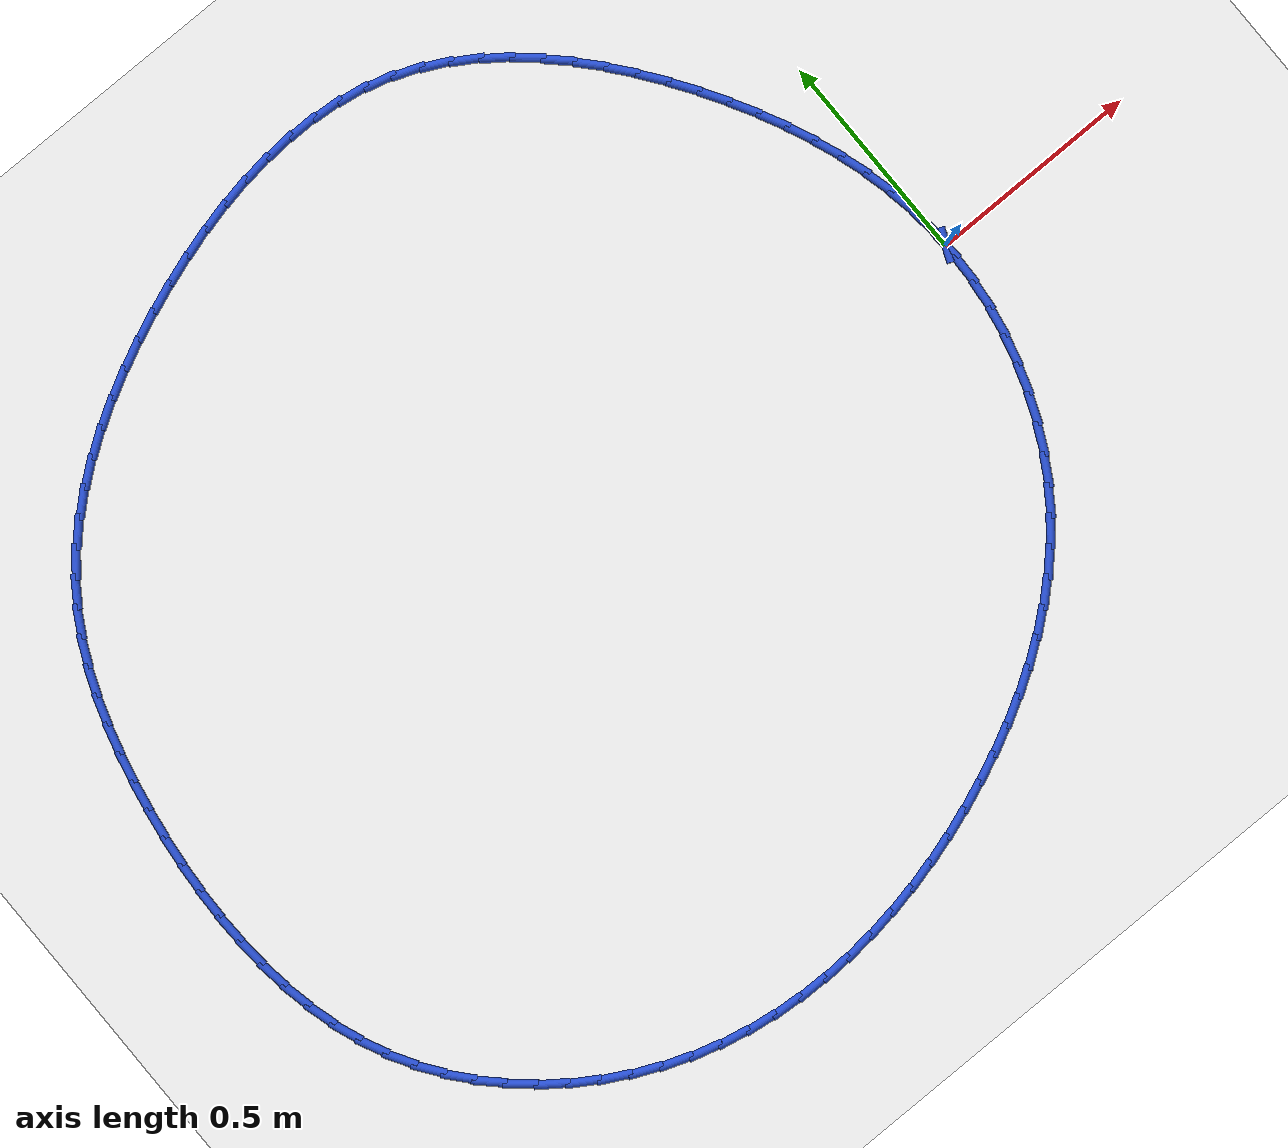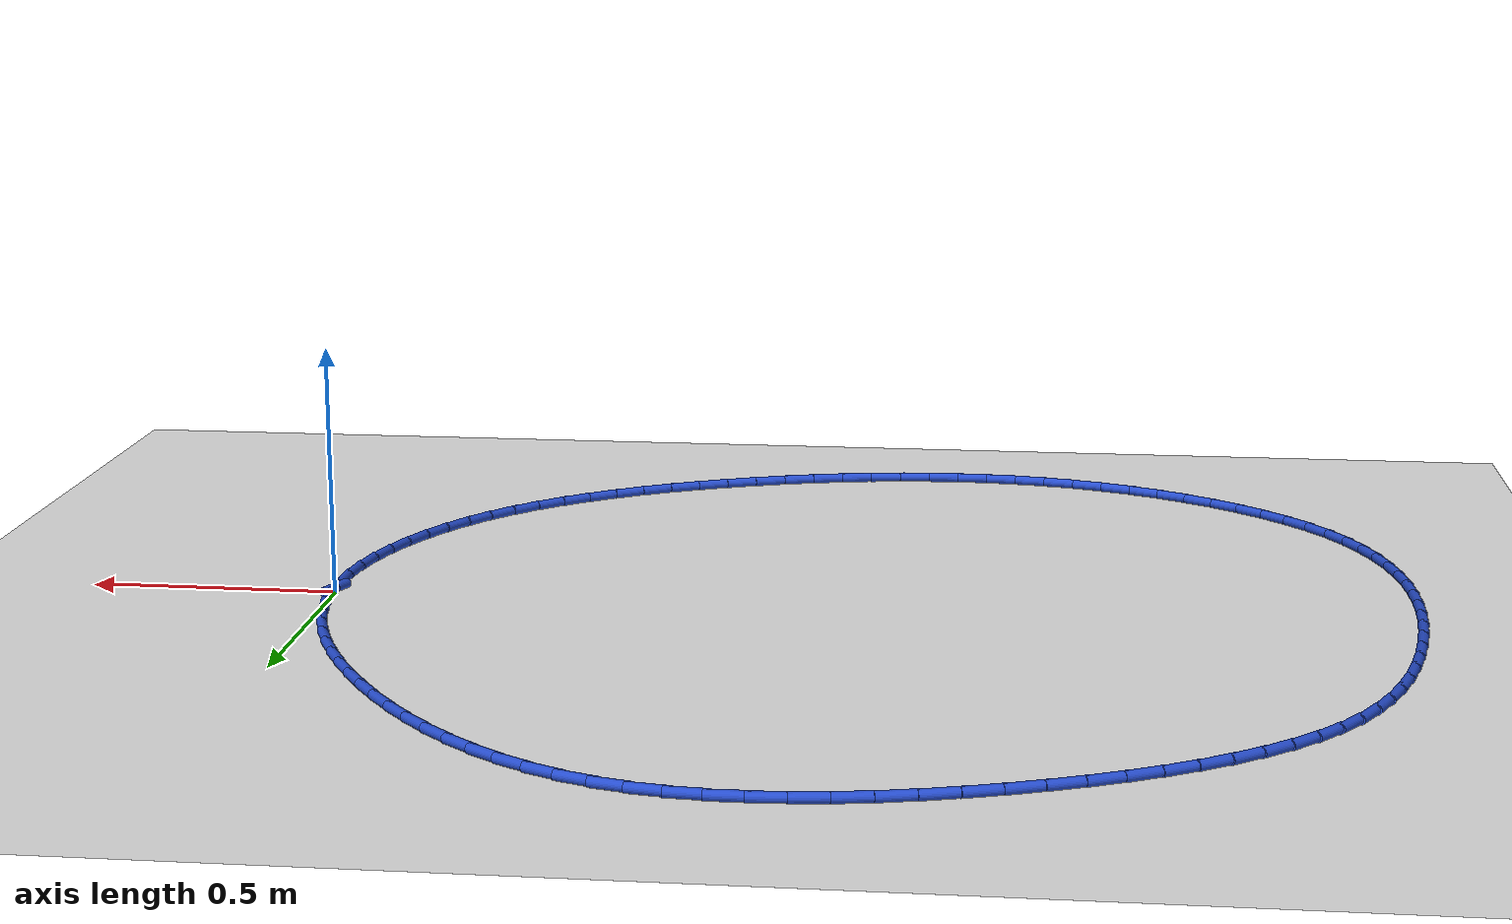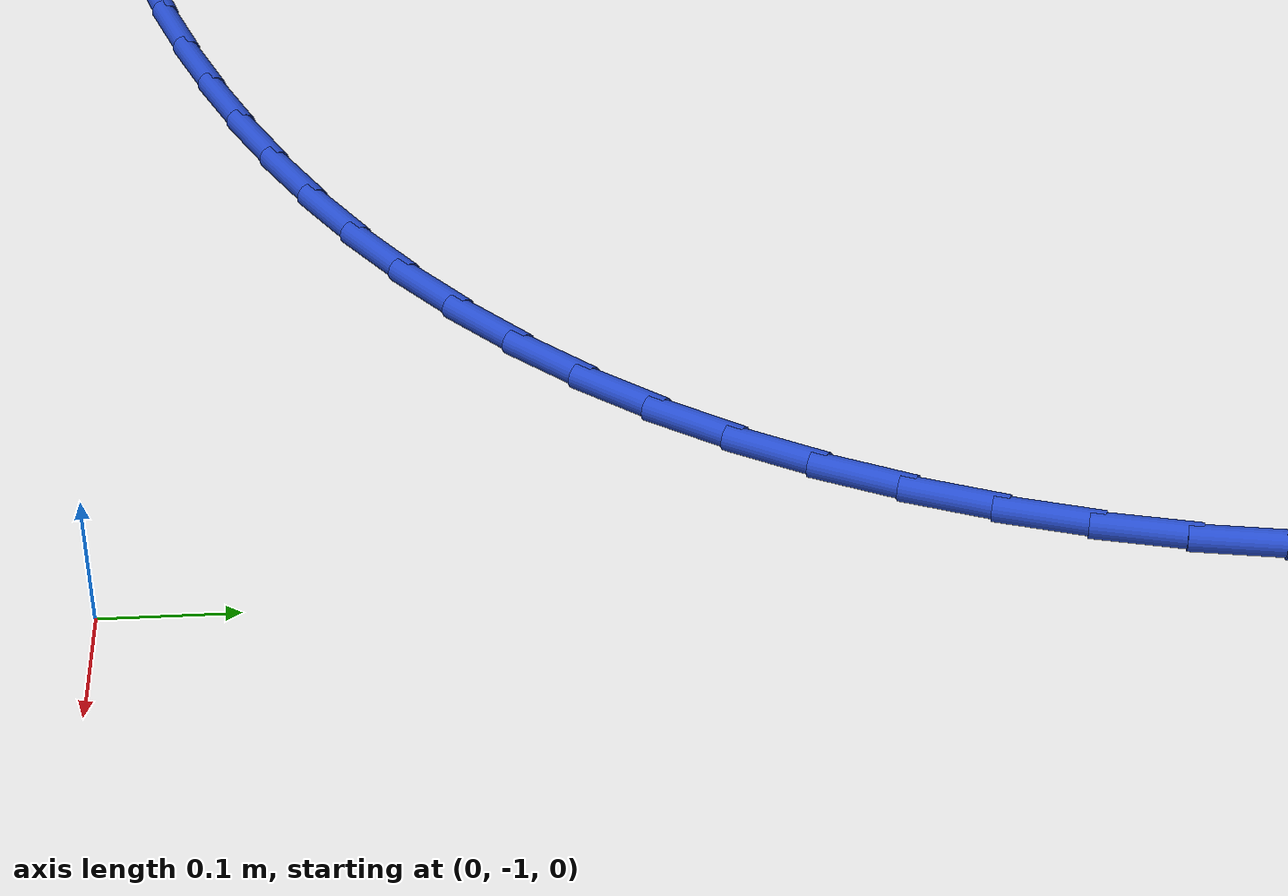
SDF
<sdf version="1.6">
 <world name="default">
  <light name="sun" type="directional">
   <pose>0 0 10 0 -0 0</pose>
   <diffuse>0.8 0.8 0.8 1</diffuse>
   <specular>0.2 0.2 0.2 1</specular>
   <attenuation>
    <range>1000</range>
    <constant>0.9</constant>
    <linear>0.01</linear>
    <quadratic>0.001</quadratic>
   </attenuation>
   <direction>-0.5 0.1 -0.9</direction>
  </light>
  <model name="ground_plane">
   <static>1</static>
   <link name="link">
    <collision name="collision">
     <geometry><plane><normal>0 0 1</normal><size>100 100</size></plane></geometry>
     <surface><friction><ode><mu>100</mu><mu2>50</mu2></ode></friction></surface>
    </collision>
    <visual name="visual">
     <cast_shadows>0</cast_shadows>
     <geometry><plane><normal>0 0 1</normal><size>100 100</size></plane></geometry>
     <material>
      <script><uri>file://media/materials/scripts/gazebo.material</uri><name>Gazebo/WhiteGlow</name></script>
     </material>
    </visual>
   </link>
  </model>
  <gravity>0 0 -9.8</gravity>
  <magnetic_field>6e-06 2.3e-05 -4.2e-05</magnetic_field>
  <atmosphere type="adiabatic"/>
  <physics name="default_physics" default="0" type="ode">
   <max_step_size>0.001</max_step_size>
   <real_time_factor>1</real_time_factor>
   <real_time_update_rate>1000</real_time_update_rate>
  </physics>
  <scene><ambient>0.4 0.4 0.4 1</ambient><background>0.7 0.7 0.7 1</background><shadows>1</shadows></scene>
  <spherical_coordinates>
   <surface_model>EARTH_WGS84</surface_model>
   <latitude_deg>0</latitude_deg>
   <longitude_deg>0</longitude_deg>
   <elevation>0</elevation>
   <heading_deg>0</heading_deg>
  </spherical_coordinates>
  <model name="line">
   <link name="link_0">
    <pose>2.0816681711721685e-17 0.0 0.01 0 1.57 -1.5187383830774717</pose>
    <collision name="collision">
     <geometry><cylinder><radius>0.01</radius><length>0.08</length></cylinder></geometry>
    </collision>
    <visual name="visual">
     <material>
      <script><name>Gazebo/Blue</name><uri>file://media/materials/scripts/gazebo.material</uri></script>
     </material>
     <geometry><cylinder><radius>0.01</radius><length>0.08</length></cylinder></geometry>
    </visual>
   </link>
   <link name="link_1">
    <pose>-0.003479693337203083 0.06678230378861025 0.01 0 1.57 -1.4456531353126494</pose>
    <collision name="collision">
     <geometry><cylinder><radius>0.01</radius><length>0.08</length></cylinder></geometry>
    </collision>
    <visual name="visual">
     <material>
      <script><name>Gazebo/Blue</name><uri>file://media/materials/scripts/gazebo.material</uri></script>
     </material>
     <geometry><cylinder><radius>0.01</radius><length>0.08</length></cylinder></geometry>
    </visual>
   </link>
   <link name="link_2">
    <pose>-0.011796565547532792 0.13289385467589704 0.01 0 1.57 -1.376314766883446</pose>
    <collision name="collision">
     <geometry><cylinder><radius>0.01</radius><length>0.08</length></cylinder></geometry>
    </collision>
    <visual name="visual">
     <material>
      <script><name>Gazebo/Blue</name><uri>file://media/materials/scripts/gazebo.material</uri></script>
     </material>
     <geometry><cylinder><radius>0.01</radius><length>0.08</length></cylinder></geometry>
    </visual>
   </link>
   <link name="link_3">
    <pose>-0.024680099646148472 0.19830206824176366 0.01 0 1.57 -1.311150788150394</pose>
    <collision name="collision">
     <geometry><cylinder><radius>0.01</radius><length>0.08</length></cylinder></geometry>
    </collision>
    <visual name="visual">
     <material>
      <script><name>Gazebo/Blue</name><uri>file://media/materials/scripts/gazebo.material</uri></script>
     </material>
     <geometry><cylinder><radius>0.01</radius><length>0.08</length></cylinder></geometry>
    </visual>
   </link>
   <link name="link_4">
    <pose>-0.041859778648209445 0.26297436006611363 0.01 0 1.57 -1.2503977789535756</pose>
    <collision name="collision">
     <geometry><cylinder><radius>0.01</radius><length>0.08</length></cylinder></geometry>
    </collision>
    <visual name="visual">
     <material>
      <script><name>Gazebo/Blue</name><uri>file://media/materials/scripts/gazebo.material</uri></script>
     </material>
     <geometry><cylinder><radius>0.01</radius><length>0.08</length></cylinder></geometry>
    </visual>
   </link>
   <link name="link_5">
    <pose>-0.06306508556887505 0.32687814572885054 0.01 0 1.57 -1.1941300214805486</pose>
    <collision name="collision">
     <geometry><cylinder><radius>0.01</radius><length>0.08</length></cylinder></geometry>
    </collision>
    <visual name="visual">
     <material>
      <script><name>Gazebo/Blue</name><uri>file://media/materials/scripts/gazebo.material</uri></script>
     </material>
     <geometry><cylinder><radius>0.01</radius><length>0.08</length></cylinder></geometry>
    </visual>
   </link>
   <link name="link_6">
    <pose>-0.08802550342330462 0.3899808408098774 0.01 0 1.57 -1.1422949735570012</pose>
    <collision name="collision">
     <geometry><cylinder><radius>0.01</radius><length>0.08</length></cylinder></geometry>
    </collision>
    <visual name="visual">
     <material>
      <script><name>Gazebo/Blue</name><uri>file://media/materials/scripts/gazebo.material</uri></script>
     </material>
     <geometry><cylinder><radius>0.01</radius><length>0.08</length></cylinder></geometry>
    </visual>
   </link>
   <link name="link_7">
    <pose>-0.11647051522665751 0.45224986088909813 0.01 0 1.57 -1.0947489926506953</pose>
    <collision name="collision">
     <geometry><cylinder><radius>0.01</radius><length>0.08</length></cylinder></geometry>
    </collision>
    <visual name="visual">
     <material>
      <script><name>Gazebo/Blue</name><uri>file://media/materials/scripts/gazebo.material</uri></script>
     </material>
     <geometry><cylinder><radius>0.01</radius><length>0.08</length></cylinder></geometry>
    </visual>
   </link>
   <link name="link_8">
    <pose>-0.14812960399409303 0.5136526215464159 0.01 0 1.57 -1.0512891870400918</pose>
    <collision name="collision">
     <geometry><cylinder><radius>0.01</radius><length>0.08</length></cylinder></geometry>
    </collision>
    <visual name="visual">
     <material>
      <script><name>Gazebo/Blue</name><uri>file://media/materials/scripts/gazebo.material</uri></script>
     </material>
     <geometry><cylinder><radius>0.01</radius><length>0.08</length></cylinder></geometry>
    </visual>
   </link>
   <link name="link_9">
    <pose>-0.18273225274077048 0.574156538361734 0.01 0 1.57 -1.0111834784148166</pose>
    <collision name="collision">
     <geometry><cylinder><radius>0.01</radius><length>0.08</length></cylinder></geometry>
    </collision>
    <visual name="visual">
     <material>
      <script><name>Gazebo/Blue</name><uri>file://media/materials/scripts/gazebo.material</uri></script>
     </material>
     <geometry><cylinder><radius>0.01</radius><length>0.08</length></cylinder></geometry>
    </visual>
   </link>
   <link name="link_10">
    <pose>-0.22002510750933066 0.6336907645570117 0.01 0 1.57 -0.970070061050504</pose>
    <collision name="collision">
     <geometry><cylinder><radius>0.01</radius><length>0.08</length></cylinder></geometry>
    </collision>
    <visual name="visual">
     <material>
      <script><name>Gazebo/Blue</name><uri>file://media/materials/scripts/gazebo.material</uri></script>
     </material>
     <geometry><cylinder><radius>0.01</radius><length>0.08</length></cylinder></geometry>
    </visual>
   </link>
   <link name="link_11">
    <pose>-0.2598934363786982 0.6918754166194534 0.01 0 1.57 -0.9254013505458694</pose>
    <collision name="collision">
     <geometry><cylinder><radius>0.01</radius><length>0.08</length></cylinder></geometry>
    </collision>
    <visual name="visual">
     <material>
      <script><name>Gazebo/Blue</name><uri>file://media/materials/scripts/gazebo.material</uri></script>
     </material>
     <geometry><cylinder><radius>0.01</radius><length>0.08</length></cylinder></geometry>
    </visual>
   </link>
   <link name="link_12">
    <pose>-0.30228956553084213 0.7481811152002565 0.01 0 1.57 -0.8764629592354627</pose>
    <collision name="collision">
     <geometry><cylinder><radius>0.01</radius><length>0.08</length></cylinder></geometry>
    </collision>
    <visual name="visual">
     <material>
      <script><name>Gazebo/Blue</name><uri>file://media/materials/scripts/gazebo.material</uri></script>
     </material>
     <geometry><cylinder><radius>0.01</radius><length>0.08</length></cylinder></geometry>
    </visual>
   </link>
   <link name="link_13">
    <pose>-0.3471662586391413 0.8020775056300946 0.01 0 1.57 -0.8224914250146801</pose>
    <collision name="collision">
     <geometry><cylinder><radius>0.01</radius><length>0.08</length></cylinder></geometry>
    </collision>
    <visual name="visual">
     <material>
      <script><name>Gazebo/Blue</name><uri>file://media/materials/scripts/gazebo.material</uri></script>
     </material>
     <geometry><cylinder><radius>0.01</radius><length>0.08</length></cylinder></geometry>
    </visual>
   </link>
   <link name="link_14">
    <pose>-0.3944762793769747 0.8530342332396411 0.01 0 1.57 -0.7626675887816037</pose>
    <collision name="collision">
     <geometry><cylinder><radius>0.01</radius><length>0.08</length></cylinder></geometry>
    </collision>
    <visual name="visual">
     <material>
      <script><name>Gazebo/Blue</name><uri>file://media/materials/scripts/gazebo.material</uri></script>
     </material>
     <geometry><cylinder><radius>0.01</radius><length>0.08</length></cylinder></geometry>
    </visual>
   </link>
   <link name="link_15">
    <pose>-0.44417239141772147 0.9005209433595704 0.01 0 1.57 -0.696141474783488</pose>
    <collision name="collision">
     <geometry><cylinder><radius>0.01</radius><length>0.08</length></cylinder></geometry>
    </collision>
    <visual name="visual">
     <material>
      <script><name>Gazebo/Blue</name><uri>file://media/materials/scripts/gazebo.material</uri></script>
     </material>
     <geometry><cylinder><radius>0.01</radius><length>0.08</length></cylinder></geometry>
    </visual>
   </link>
   <link name="link_16">
    <pose>-0.4962073584347608 0.9440072813205567 0.01 0 1.57 -0.6220864086940098</pose>
    <collision name="collision">
     <geometry><cylinder><radius>0.01</radius><length>0.08</length></cylinder></geometry>
    </collision>
    <visual name="visual">
     <material>
      <script><name>Gazebo/Blue</name><uri>file://media/materials/scripts/gazebo.material</uri></script>
     </material>
     <geometry><cylinder><radius>0.01</radius><length>0.08</length></cylinder></geometry>
    </visual>
   </link>
   <link name="link_17">
    <pose>-0.5505339441014714 0.9829628924532726 0.01 0 1.57 -0.5397947102771997</pose>
    <collision name="collision">
     <geometry><cylinder><radius>0.01</radius><length>0.08</length></cylinder></geometry>
    </collision>
    <visual name="visual">
     <material>
      <script><name>Gazebo/Blue</name><uri>file://media/materials/scripts/gazebo.material</uri></script>
     </material>
     <geometry><cylinder><radius>0.01</radius><length>0.08</length></cylinder></geometry>
    </visual>
   </link>
   <link name="link_18">
    <pose>-0.6071049120912324 1.0168574220883928 0.01 0 1.57 -0.4488246607949787</pose>
    <collision name="collision">
     <geometry><cylinder><radius>0.01</radius><length>0.08</length></cylinder></geometry>
    </collision>
    <visual name="visual">
     <material>
      <script><name>Gazebo/Blue</name><uri>file://media/materials/scripts/gazebo.material</uri></script>
     </material>
     <geometry><cylinder><radius>0.01</radius><length>0.08</length></cylinder></geometry>
    </visual>
   </link>
   <link name="link_19">
    <pose>-0.6658730260774229 1.0451605155565908 0.01 0 1.57 -0.3492708769257588</pose>
    <collision name="collision">
     <geometry><cylinder><radius>0.01</radius><length>0.08</length></cylinder></geometry>
    </collision>
    <visual name="visual">
     <material>
      <script><name>Gazebo/Blue</name><uri>file://media/materials/scripts/gazebo.material</uri></script>
     </material>
     <geometry><cylinder><radius>0.01</radius><length>0.08</length></cylinder></geometry>
    </visual>
   </link>
   <link name="link_20">
    <pose>-0.726789710607035 1.0673465206305373 0.01 0 1.57 -0.24711293350780855</pose>
    <collision name="collision">
     <geometry><cylinder><radius>0.01</radius><length>0.08</length></cylinder></geometry>
    </collision>
    <visual name="visual">
     <material>
      <script><name>Gazebo/Blue</name><uri>file://media/materials/scripts/gazebo.material</uri></script>
     </material>
     <geometry><cylinder><radius>0.01</radius><length>0.08</length></cylinder></geometry>
    </visual>
   </link>
   <link name="link_21">
    <pose>-0.789712368644573 1.0832199488689631 0.01 0 1.57 -0.15209700760386016</pose>
    <collision name="collision">
     <geometry><cylinder><radius>0.01</radius><length>0.08</length></cylinder></geometry>
    </collision>
    <visual name="visual">
     <material>
      <script><name>Gazebo/Blue</name><uri>file://media/materials/scripts/gazebo.material</uri></script>
     </material>
     <geometry><cylinder><radius>0.01</radius><length>0.08</length></cylinder></geometry>
    </visual>
   </link>
   <link name="link_22">
    <pose>-0.8543442107677962 1.0931267698750569 0.01 0 1.57 -0.06557928395961914</pose>
    <collision name="collision">
     <geometry><cylinder><radius>0.01</radius><length>0.08</length></cylinder></geometry>
    </collision>
    <visual name="visual">
     <material>
      <script><name>Gazebo/Blue</name><uri>file://media/materials/scripts/gazebo.material</uri></script>
     </material>
     <geometry><cylinder><radius>0.01</radius><length>0.08</length></cylinder></geometry>
    </visual>
   </link>
   <link name="link_23">
    <pose>-0.9203741432713728 1.0974631838069193 0.01 0 1.57 0.012481939877408562</pose>
    <collision name="collision">
     <geometry><cylinder><radius>0.01</radius><length>0.08</length></cylinder></geometry>
    </collision>
    <visual name="visual">
     <material>
      <script><name>Gazebo/Blue</name><uri>file://media/materials/scripts/gazebo.material</uri></script>
     </material>
     <geometry><cylinder><radius>0.01</radius><length>0.08</length></cylinder></geometry>
    </visual>
   </link>
   <link name="link_24">
    <pose>-0.9874910724499706 1.0966253908226502 0.01 0 1.57 0.08252777717005916</pose>
    <collision name="collision">
     <geometry><cylinder><radius>0.01</radius><length>0.08</length></cylinder></geometry>
    </collision>
    <visual name="visual">
     <material>
      <script><name>Gazebo/Blue</name><uri>file://media/materials/scripts/gazebo.material</uri></script>
     </material>
     <geometry><cylinder><radius>0.01</radius><length>0.08</length></cylinder></geometry>
    </visual>
   </link>
   <link name="link_25">
    <pose>-1.055383904598259 1.09100959108035 0.01 0 1.57 0.14522477893273686</pose>
    <collision name="collision">
     <geometry><cylinder><radius>0.01</radius><length>0.08</length></cylinder></geometry>
    </collision>
    <visual name="visual">
     <material>
      <script><name>Gazebo/Blue</name><uri>file://media/materials/scripts/gazebo.material</uri></script>
     </material>
     <geometry><cylinder><radius>0.01</radius><length>0.08</length></cylinder></geometry>
    </visual>
   </link>
   <link name="link_26">
    <pose>-1.1237415460109057 1.0810119847381185 0.01 0 1.57 0.20133536938013774</pose>
    <collision name="collision">
     <geometry><cylinder><radius>0.01</radius><length>0.08</length></cylinder></geometry>
    </collision>
    <visual name="visual">
     <material>
      <script><name>Gazebo/Blue</name><uri>file://media/materials/scripts/gazebo.material</uri></script>
     </material>
     <geometry><cylinder><radius>0.01</radius><length>0.08</length></cylinder></geometry>
    </visual>
   </link>
   <link name="link_27">
    <pose>-1.1922529029825797 1.0670287719540563 0.01 0 1.57 0.2516334574924002</pose>
    <collision name="collision">
     <geometry><cylinder><radius>0.01</radius><length>0.08</length></cylinder></geometry>
    </collision>
    <visual name="visual">
     <material>
      <script><name>Gazebo/Blue</name><uri>file://media/materials/scripts/gazebo.material</uri></script>
     </material>
     <geometry><cylinder><radius>0.01</radius><length>0.08</length></cylinder></geometry>
    </visual>
   </link>
   <link name="link_28">
    <pose>-1.2606068818079488 1.0494561528862636 0.01 0 1.57 0.2968560771919993</pose>
    <collision name="collision">
     <geometry><cylinder><radius>0.01</radius><length>0.08</length></cylinder></geometry>
    </collision>
    <visual name="visual">
     <material>
      <script><name>Gazebo/Blue</name><uri>file://media/materials/scripts/gazebo.material</uri></script>
     </material>
     <geometry><cylinder><radius>0.01</radius><length>0.08</length></cylinder></geometry>
    </visual>
   </link>
   <link name="link_29">
    <pose>-1.3284923887816809 1.0286903276928403 0.01 0 1.57 0.3376801105841949</pose>
    <collision name="collision">
     <geometry><cylinder><radius>0.01</radius><length>0.08</length></cylinder></geometry>
    </collision>
    <visual name="visual">
     <material>
      <script><name>Gazebo/Blue</name><uri>file://media/materials/scripts/gazebo.material</uri></script>
     </material>
     <geometry><cylinder><radius>0.01</radius><length>0.08</length></cylinder></geometry>
    </visual>
   </link>
   <link name="link_30">
    <pose>-1.3955983301984456 1.0051274965318864 0.01 0 1.57 0.37515721307792776</pose>
    <collision name="collision">
     <geometry><cylinder><radius>0.01</radius><length>0.08</length></cylinder></geometry>
    </collision>
    <visual name="visual">
     <material>
      <script><name>Gazebo/Blue</name><uri>file://media/materials/scripts/gazebo.material</uri></script>
     </material>
     <geometry><cylinder><radius>0.01</radius><length>0.08</length></cylinder></geometry>
    </visual>
   </link>
   <link name="link_31">
    <pose>-1.4616115541705943 0.9791309503210415 0.01 0 1.57 0.41386113426279597</pose>
    <collision name="collision">
     <geometry><cylinder><radius>0.01</radius><length>0.08</length></cylinder></geometry>
    </collision>
    <visual name="visual">
     <material>
      <script><name>Gazebo/Blue</name><uri>file://media/materials/scripts/gazebo.material</uri></script>
     </material>
     <geometry><cylinder><radius>0.01</radius><length>0.08</length></cylinder></geometry>
    </visual>
   </link>
   <link name="link_32">
    <pose>-1.5262000099688815 0.9507617975535273 0.01 0 1.57 0.456393995896438</pose>
    <collision name="collision">
     <geometry><cylinder><radius>0.01</radius><length>0.08</length></cylinder></geometry>
    </collision>
    <visual name="visual">
     <material>
      <script><name>Gazebo/Blue</name><uri>file://media/materials/scripts/gazebo.material</uri></script>
     </material>
     <geometry><cylinder><radius>0.01</radius><length>0.08</length></cylinder></geometry>
    </visual>
   </link>
   <link name="link_33">
    <pose>-1.5890214820268878 0.9199186163830221 0.01 0 1.57 0.5032035440295061</pose>
    <collision name="collision">
     <geometry><cylinder><radius>0.01</radius><length>0.08</length></cylinder></geometry>
    </collision>
    <visual name="visual">
     <material>
      <script><name>Gazebo/Blue</name><uri>file://media/materials/scripts/gazebo.material</uri></script>
     </material>
     <geometry><cylinder><radius>0.01</radius><length>0.08</length></cylinder></geometry>
    </visual>
   </link>
   <link name="link_34">
    <pose>-1.6497336569199954 0.8864984202626834 0.01 0 1.57 0.5547309513055131</pose>
    <collision name="collision">
     <geometry><cylinder><radius>0.01</radius><length>0.08</length></cylinder></geometry>
    </collision>
    <visual name="visual">
     <material>
      <script><name>Gazebo/Blue</name><uri>file://media/materials/scripts/gazebo.material</uri></script>
     </material>
     <geometry><cylinder><radius>0.01</radius><length>0.08</length></cylinder></geometry>
    </visual>
   </link>
   <link name="link_35">
    <pose>-1.7079942212235886 0.8503982226456689 0.01 0 1.57 0.6114097345750679</pose>
    <collision name="collision">
     <geometry><cylinder><radius>0.01</radius><length>0.08</length></cylinder></geometry>
    </collision>
    <visual name="visual">
     <material>
      <script><name>Gazebo/Blue</name><uri>file://media/materials/scripts/gazebo.material</uri></script>
     </material>
     <geometry><cylinder><radius>0.01</radius><length>0.08</length></cylinder></geometry>
    </visual>
   </link>
   <link name="link_36">
    <pose>-1.7634608615130483 0.811515036985136 0.01 0 1.57 0.6736311261494863</pose>
    <collision name="collision">
     <geometry><cylinder><radius>0.01</radius><length>0.08</length></cylinder></geometry>
    </collision>
    <visual name="visual">
     <material>
      <script><name>Gazebo/Blue</name><uri>file://media/materials/scripts/gazebo.material</uri></script>
     </material>
     <geometry><cylinder><radius>0.01</radius><length>0.08</length></cylinder></geometry>
    </visual>
   </link>
   <link name="link_37">
    <pose>-1.8157912643637586 0.7697458767342413 0.01 0 1.57 0.7416942317323153</pose>
    <collision name="collision">
     <geometry><cylinder><radius>0.01</radius><length>0.08</length></cylinder></geometry>
    </collision>
    <visual name="visual">
     <material>
      <script><name>Gazebo/Blue</name><uri>file://media/materials/scripts/gazebo.material</uri></script>
     </material>
     <geometry><cylinder><radius>0.01</radius><length>0.08</length></cylinder></geometry>
    </visual>
   </link>
   <link name="link_38">
    <pose>-1.8646431163511017 0.724987755346143 0.01 0 1.57 0.8157403697529217</pose>
    <collision name="collision">
     <geometry><cylinder><radius>0.01</radius><length>0.08</length></cylinder></geometry>
    </collision>
    <visual name="visual">
     <material>
      <script><name>Gazebo/Blue</name><uri>file://media/materials/scripts/gazebo.material</uri></script>
     </material>
     <geometry><cylinder><radius>0.01</radius><length>0.08</length></cylinder></geometry>
    </visual>
   </link>
   <link name="link_39">
    <pose>-1.9096741040504615 0.6771376862739984 0.01 0 1.57 0.8956755466541075</pose>
    <collision name="collision">
     <geometry><cylinder><radius>0.01</radius><length>0.08</length></cylinder></geometry>
    </collision>
    <visual name="visual">
     <material>
      <script><name>Gazebo/Blue</name><uri>file://media/materials/scripts/gazebo.material</uri></script>
     </material>
     <geometry><cylinder><radius>0.01</radius><length>0.08</length></cylinder></geometry>
    </visual>
   </link>
   <link name="link_40">
    <pose>-1.95054191403722 0.6260926829709647 0.01 0 1.57 0.9804484869251218</pose>
    <collision name="collision">
     <geometry><cylinder><radius>0.01</radius><length>0.08</length></cylinder></geometry>
    </collision>
    <visual name="visual">
     <material>
      <script><name>Gazebo/Blue</name><uri>file://media/materials/scripts/gazebo.material</uri></script>
     </material>
     <geometry><cylinder><radius>0.01</radius><length>0.08</length></cylinder></geometry>
    </visual>
   </link>
   <link name="link_41">
    <pose>-1.9869391406517338 0.5717732913691893 0.01 0 1.57 1.0622589568901197</pose>
    <collision name="collision">
     <geometry><cylinder><radius>0.01</radius><length>0.08</length></cylinder></geometry>
    </collision>
    <visual name="visual">
     <material>
      <script><name>Gazebo/Blue</name><uri>file://media/materials/scripts/gazebo.material</uri></script>
     </material>
     <geometry><cylinder><radius>0.01</radius><length>0.08</length></cylinder></geometry>
    </visual>
   </link>
   <link name="link_42">
    <pose>-2.018943707222595 0.5143598204170617 0.01 0 1.57 1.1361967375677309</pose>
    <collision name="collision">
     <geometry><cylinder><radius>0.01</radius><length>0.08</length></cylinder></geometry>
    </collision>
    <visual name="visual">
     <material>
      <script><name>Gazebo/Blue</name><uri>file://media/materials/scripts/gazebo.material</uri></script>
     </material>
     <geometry><cylinder><radius>0.01</radius><length>0.08</length></cylinder></geometry>
    </visual>
   </link>
   <link name="link_43">
    <pose>-2.0468727478215767 0.45419383893716386 0.01 0 1.57 1.202132121747323</pose>
    <collision name="collision">
     <geometry><cylinder><radius>0.01</radius><length>0.08</length></cylinder></geometry>
    </collision>
    <visual name="visual">
     <material>
      <script><name>Gazebo/Blue</name><uri>file://media/materials/scripts/gazebo.material</uri></script>
     </material>
     <geometry><cylinder><radius>0.01</radius><length>0.08</length></cylinder></geometry>
    </visual>
   </link>
   <link name="link_44">
    <pose>-2.071046982016315 0.39161933285343564 0.01 0 1.57 1.2603125709435175</pose>
    <collision name="collision">
     <geometry><cylinder><radius>0.01</radius><length>0.08</length></cylinder></geometry>
    </collision>
    <visual name="visual">
     <material>
      <script><name>Gazebo/Blue</name><uri>file://media/materials/scripts/gazebo.material</uri></script>
     </material>
     <geometry><cylinder><radius>0.01</radius><length>0.08</length></cylinder></geometry>
    </visual>
   </link>
   <link name="link_45">
    <pose>-2.0917871293744463 0.3269802880898162 0.01 0 1.57 1.3111665284996123</pose>
    <collision name="collision">
     <geometry><cylinder><radius>0.01</radius><length>0.08</length></cylinder></geometry>
    </collision>
    <visual name="visual">
     <material>
      <script><name>Gazebo/Blue</name><uri>file://media/materials/scripts/gazebo.material</uri></script>
     </material>
     <geometry><cylinder><radius>0.01</radius><length>0.08</length></cylinder></geometry>
    </visual>
   </link>
   <link name="link_46">
    <pose>-2.1094139094636057 0.2606206905702451 0.01 0 1.57 1.3552012902809234</pose>
    <collision name="collision">
     <geometry><cylinder><radius>0.01</radius><length>0.08</length></cylinder></geometry>
    </collision>
    <visual name="visual">
     <material>
      <script><name>Gazebo/Blue</name><uri>file://media/materials/scripts/gazebo.material</uri></script>
     </material>
     <geometry><cylinder><radius>0.01</radius><length>0.08</length></cylinder></geometry>
    </visual>
   </link>
   <link name="link_47">
    <pose>-2.1242480418514305 0.19288452621866178 0.01 0 1.57 1.3930417455002087</pose>
    <collision name="collision">
     <geometry><cylinder><radius>0.01</radius><length>0.08</length></cylinder></geometry>
    </collision>
    <visual name="visual">
     <material>
      <script><name>Gazebo/Blue</name><uri>file://media/materials/scripts/gazebo.material</uri></script>
     </material>
     <geometry><cylinder><radius>0.01</radius><length>0.08</length></cylinder></geometry>
    </visual>
   </link>
   <link name="link_48">
    <pose>-2.1366024804240076 0.12411530647527223 0.01 0 1.57 1.4288161410829463</pose>
    <collision name="collision">
     <geometry><cylinder><radius>0.01</radius><length>0.08</length></cylinder></geometry>
    </collision>
    <visual name="visual">
     <material>
      <script><name>Gazebo/Blue</name><uri>file://media/materials/scripts/gazebo.material</uri></script>
     </material>
     <geometry><cylinder><radius>0.01</radius><length>0.08</length></cylinder></geometry>
    </visual>
   </link>
   <link name="link_49">
    <pose>-2.1465332965975232 0.05464084724181996 0.01 0 1.57 1.4673539430478069</pose>
    <collision name="collision">
     <geometry><cylinder><radius>0.01</radius><length>0.08</length></cylinder></geometry>
    </collision>
    <visual name="visual">
     <material>
      <script><name>Gazebo/Blue</name><uri>file://media/materials/scripts/gazebo.material</uri></script>
     </material>
     <geometry><cylinder><radius>0.01</radius><length>0.08</length></cylinder></geometry>
    </visual>
   </link>
   <link name="link_50">
    <pose>-2.1537867897863014 -0.01522996267284041 0.01 0 1.57 1.5093522334289262</pose>
    <collision name="collision">
     <geometry><cylinder><radius>0.01</radius><length>0.08</length></cylinder></geometry>
    </collision>
    <visual name="visual">
     <material>
      <script><name>Gazebo/Blue</name><uri>file://media/materials/scripts/gazebo.material</uri></script>
     </material>
     <geometry><cylinder><radius>0.01</radius><length>0.08</length></cylinder></geometry>
    </visual>
   </link>
   <link name="link_51">
    <pose>-2.158090799455664 -0.0851893623641432 0.01 0 1.57 1.5552776118826348</pose>
    <collision name="collision">
     <geometry><cylinder><radius>0.01</radius><length>0.08</length></cylinder></geometry>
    </collision>
    <visual name="visual">
     <material>
      <script><name>Gazebo/Blue</name><uri>file://media/materials/scripts/gazebo.material</uri></script>
     </material>
     <geometry><cylinder><radius>0.01</radius><length>0.08</length></cylinder></geometry>
    </visual>
   </link>
   <link name="link_52">
    <pose>-2.1591731650709387 -0.1549295909275228 0.01 0 1.57 -1.5359697244376698</pose>
    <collision name="collision">
     <geometry><cylinder><radius>0.01</radius><length>0.08</length></cylinder></geometry>
    </collision>
    <visual name="visual">
     <material>
      <script><name>Gazebo/Blue</name><uri>file://media/materials/scripts/gazebo.material</uri></script>
     </material>
     <geometry><cylinder><radius>0.01</radius><length>0.08</length></cylinder></geometry>
    </visual>
   </link>
   <link name="link_53">
    <pose>-2.1567617260974496 -0.22414288745841357 0.01 0 1.57 -1.4806997190351703</pose>
    <collision name="collision">
     <geometry><cylinder><radius>0.01</radius><length>0.08</length></cylinder></geometry>
    </collision>
    <visual name="visual">
     <material>
      <script><name>Gazebo/Blue</name><uri>file://media/materials/scripts/gazebo.material</uri></script>
     </material>
     <geometry><cylinder><radius>0.01</radius><length>0.08</length></cylinder></geometry>
    </visual>
   </link>
   <link name="link_54">
    <pose>-2.1505843220005203 -0.29252149105224967 0.01 0 1.57 -1.4200144202755338</pose>
    <collision name="collision">
     <geometry><cylinder><radius>0.01</radius><length>0.08</length></cylinder></geometry>
    </collision>
    <visual name="visual">
     <material>
      <script><name>Gazebo/Blue</name><uri>file://media/materials/scripts/gazebo.material</uri></script>
     </material>
     <geometry><cylinder><radius>0.01</radius><length>0.08</length></cylinder></geometry>
    </visual>
   </link>
   <link name="link_55">
    <pose>-2.140368792245478 -0.35975764080446593 0.01 0 1.57 -1.353479002425278</pose>
    <collision name="collision">
     <geometry><cylinder><radius>0.01</radius><length>0.08</length></cylinder></geometry>
    </collision>
    <visual name="visual">
     <material>
      <script><name>Gazebo/Blue</name><uri>file://media/materials/scripts/gazebo.material</uri></script>
     </material>
     <geometry><cylinder><radius>0.01</radius><length>0.08</length></cylinder></geometry>
    </visual>
   </link>
   <link name="link_56">
    <pose>-2.125842976297646 -0.4255435758104962 0.01 0 1.57 -1.2807748022949725</pose>
    <collision name="collision">
     <geometry><cylinder><radius>0.01</radius><length>0.08</length></cylinder></geometry>
    </collision>
    <visual name="visual">
     <material>
      <script><name>Gazebo/Blue</name><uri>file://media/materials/scripts/gazebo.material</uri></script>
     </material>
     <geometry><cylinder><radius>0.01</radius><length>0.08</length></cylinder></geometry>
    </visual>
   </link>
   <link name="link_57">
    <pose>-2.106734713622351 -0.48957153516577523 0.01 0 1.57 -1.201778604086592</pose>
    <collision name="collision">
     <geometry><cylinder><radius>0.01</radius><length>0.08</length></cylinder></geometry>
    </collision>
    <visual name="visual">
     <material>
      <script><name>Gazebo/Blue</name><uri>file://media/materials/scripts/gazebo.material</uri></script>
     </material>
     <geometry><cylinder><radius>0.01</radius><length>0.08</length></cylinder></geometry>
    </visual>
   </link>
   <link name="link_58">
    <pose>-2.0827718436849163 -0.5515337579657364 0.01 0 1.57 -1.116654586109499</pose>
    <collision name="collision">
     <geometry><cylinder><radius>0.01</radius><length>0.08</length></cylinder></geometry>
    </collision>
    <visual name="visual">
     <material>
      <script><name>Gazebo/Blue</name><uri>file://media/materials/scripts/gazebo.material</uri></script>
     </material>
     <geometry><cylinder><radius>0.01</radius><length>0.08</length></cylinder></geometry>
    </visual>
   </link>
   <link name="link_59">
    <pose>-2.053682205950668 -0.6111224833058155 0.01 0 1.57 -1.0261103324808794</pose>
    <collision name="collision">
     <geometry><cylinder><radius>0.01</radius><length>0.08</length></cylinder></geometry>
    </collision>
    <visual name="visual">
     <material>
      <script><name>Gazebo/Blue</name><uri>file://media/materials/scripts/gazebo.material</uri></script>
     </material>
     <geometry><cylinder><radius>0.01</radius><length>0.08</length></cylinder></geometry>
    </visual>
   </link>
   <link name="link_60">
    <pose>-2.019205794852791 -0.6680314024442207 0.01 0 1.57 -0.9355719706601698</pose>
    <collision name="collision">
     <geometry><cylinder><radius>0.01</radius><length>0.08</length></cylinder></geometry>
    </collision>
    <visual name="visual">
     <material>
      <script><name>Gazebo/Blue</name><uri>file://media/materials/scripts/gazebo.material</uri></script>
     </material>
     <geometry><cylinder><radius>0.01</radius><length>0.08</length></cylinder></geometry>
    </visual>
   </link>
   <link name="link_61">
    <pose>-1.9794264742390901 -0.7219952889660656 0.01 0 1.57 -0.8501308265715187</pose>
    <collision name="collision">
     <geometry><cylinder><radius>0.01</radius><length>0.08</length></cylinder></geometry>
    </collision>
    <visual name="visual">
     <material>
      <script><name>Gazebo/Blue</name><uri>file://media/materials/scripts/gazebo.material</uri></script>
     </material>
     <geometry><cylinder><radius>0.01</radius><length>0.08</length></cylinder></geometry>
    </visual>
   </link>
   <link name="link_62">
    <pose>-1.9348120208209256 -0.7727947828030849 0.01 0 1.57 -0.76938515800423</pose>
    <collision name="collision">
     <geometry><cylinder><radius>0.01</radius><length>0.08</length></cylinder></geometry>
    </collision>
    <visual name="visual">
     <material>
      <script><name>Gazebo/Blue</name><uri>file://media/materials/scripts/gazebo.material</uri></script>
     </material>
     <geometry><cylinder><radius>0.01</radius><length>0.08</length></cylinder></geometry>
    </visual>
   </link>
   <link name="link_63">
    <pose>-1.8858504054423029 -0.820212936494602 0.01 0 1.57 -0.6925278646120717</pose>
    <collision name="collision">
     <geometry><cylinder><radius>0.01</radius><length>0.08</length></cylinder></geometry>
    </collision>
    <visual name="visual">
     <material>
      <script><name>Gazebo/Blue</name><uri>file://media/materials/scripts/gazebo.material</uri></script>
     </material>
     <geometry><cylinder><radius>0.01</radius><length>0.08</length></cylinder></geometry>
    </visual>
   </link>
   <link name="link_64">
    <pose>-1.8330295989472278 -0.8640328025799396 0.01 0 1.57 -0.6186860093875883</pose>
    <collision name="collision">
     <geometry><cylinder><radius>0.01</radius><length>0.08</length></cylinder></geometry>
    </collision>
    <visual name="visual">
     <material>
      <script><name>Gazebo/Blue</name><uri>file://media/materials/scripts/gazebo.material</uri></script>
     </material>
     <geometry><cylinder><radius>0.01</radius><length>0.08</length></cylinder></geometry>
    </visual>
   </link>
   <link name="link_65">
    <pose>-1.7768375721797058 -0.9040374335984208 0.01 0 1.57 -0.5469566124028127</pose>
    <collision name="collision">
     <geometry><cylinder><radius>0.01</radius><length>0.08</length></cylinder></geometry>
    </collision>
    <visual name="visual">
     <material>
      <script><name>Gazebo/Blue</name><uri>file://media/materials/scripts/gazebo.material</uri></script>
     </material>
     <geometry><cylinder><radius>0.01</radius><length>0.08</length></cylinder></geometry>
    </visual>
   </link>
   <link name="link_66">
    <pose>-1.7177622959837417 -0.9400098820893681 0.01 0 1.57 -0.47642349246987825</pose>
    <collision name="collision">
     <geometry><cylinder><radius>0.01</radius><length>0.08</length></cylinder></geometry>
    </collision>
    <visual name="visual">
     <material>
      <script><name>Gazebo/Blue</name><uri>file://media/materials/scripts/gazebo.material</uri></script>
     </material>
     <geometry><cylinder><radius>0.01</radius><length>0.08</length></cylinder></geometry>
    </visual>
   </link>
   <link name="link_67">
    <pose>-1.6562917412033422 -0.9717332005921049 0.01 0 1.57 -0.4061614440229967</pose>
    <collision name="collision">
     <geometry><cylinder><radius>0.01</radius><length>0.08</length></cylinder></geometry>
    </collision>
    <visual name="visual">
     <material>
      <script><name>Gazebo/Blue</name><uri>file://media/materials/scripts/gazebo.material</uri></script>
     </material>
     <geometry><cylinder><radius>0.01</radius><length>0.08</length></cylinder></geometry>
    </visual>
   </link>
   <link name="link_68">
    <pose>-1.5929138786825119 -0.9989904416459536 0.01 0 1.57 -0.3352331933891794</pose>
    <collision name="collision">
     <geometry><cylinder><radius>0.01</radius><length>0.08</length></cylinder></geometry>
    </collision>
    <visual name="visual">
     <material>
      <script><name>Gazebo/Blue</name><uri>file://media/materials/scripts/gazebo.material</uri></script>
     </material>
     <geometry><cylinder><radius>0.01</radius><length>0.08</length></cylinder></geometry>
    </visual>
   </link>
   <link name="link_69">
    <pose>-1.5281166792652559 -1.0215646577902373 0.01 0 1.57 -0.26334977633662304</pose>
    <collision name="collision">
     <geometry><cylinder><radius>0.01</radius><length>0.08</length></cylinder></geometry>
    </collision>
    <visual name="visual">
     <material>
      <script><name>Gazebo/Blue</name><uri>file://media/materials/scripts/gazebo.material</uri></script>
     </material>
     <geometry><cylinder><radius>0.01</radius><length>0.08</length></cylinder></geometry>
    </visual>
   </link>
   <link name="link_70">
    <pose>-1.4623414750943153 -1.0392984148924076 0.01 0 1.57 -0.19310554578722122</pose>
    <collision name="collision">
     <geometry><cylinder><radius>0.01</radius><length>0.08</length></cylinder></geometry>
    </collision>
    <visual name="visual">
     <material>
      <script><name>Gazebo/Blue</name><uri>file://media/materials/scripts/gazebo.material</uri></script>
     </material>
     <geometry><cylinder><radius>0.01</radius><length>0.08</length></cylinder></geometry>
    </visual>
   </link>
   <link name="link_71">
    <pose>-1.395815897733764 -1.0523069715046405 0.01 0 1.57 -0.12564569081536742</pose>
    <collision name="collision">
     <geometry><cylinder><radius>0.01</radius><length>0.08</length></cylinder></geometry>
    </collision>
    <visual name="visual">
     <material>
      <script><name>Gazebo/Blue</name><uri>file://media/materials/scripts/gazebo.material</uri></script>
     </material>
     <geometry><cylinder><radius>0.01</radius><length>0.08</length></cylinder></geometry>
    </visual>
   </link>
   <link name="link_72">
    <pose>-1.32870640781729 -1.0607836433623734 0.01 0 1.57 -0.0612043190921046</pose>
    <collision name="collision">
     <geometry><cylinder><radius>0.01</radius><length>0.08</length></cylinder></geometry>
    </collision>
    <visual name="visual">
     <material>
      <script><name>Gazebo/Blue</name><uri>file://media/materials/scripts/gazebo.material</uri></script>
     </material>
     <geometry><cylinder><radius>0.01</radius><length>0.08</length></cylinder></geometry>
    </visual>
   </link>
   <link name="link_73">
    <pose>-1.261179461020303 -1.0649217525280628 0.01 0 1.57 0.0001052180551767527</pose>
    <collision name="collision">
     <geometry><cylinder><radius>0.01</radius><length>0.08</length></cylinder></geometry>
    </collision>
    <visual name="visual">
     <material>
      <script><name>Gazebo/Blue</name><uri>file://media/materials/scripts/gazebo.material</uri></script>
     </material>
     <geometry><cylinder><radius>0.01</radius><length>0.08</length></cylinder></geometry>
    </visual>
   </link>
   <link name="link_74">
    <pose>-1.1934015130182105 -1.0649146210641638 0.01 0 1.57 0.05827324443792256</pose>
    <collision name="collision">
     <geometry><cylinder><radius>0.01</radius><length>0.08</length></cylinder></geometry>
    </collision>
    <visual name="visual">
     <material>
      <script><name>Gazebo/Blue</name><uri>file://media/materials/scripts/gazebo.material</uri></script>
     </material>
     <geometry><cylinder><radius>0.01</radius><length>0.08</length></cylinder></geometry>
    </visual>
   </link>
   <link name="link_75">
    <pose>-1.125539019486421 -1.0609555710331326 0.01 0 1.57 0.1133739360315602</pose>
    <collision name="collision">
     <geometry><cylinder><radius>0.01</radius><length>0.08</length></cylinder></geometry>
    </collision>
    <visual name="visual">
     <material>
      <script><name>Gazebo/Blue</name><uri>file://media/materials/scripts/gazebo.material</uri></script>
     </material>
     <geometry><cylinder><radius>0.01</radius><length>0.08</length></cylinder></geometry>
    </visual>
   </link>
   <link name="link_76">
    <pose>-1.0577584361003425 -1.0532379244974253 0.01 0 1.57 0.16554559873559932</pose>
    <collision name="collision">
     <geometry><cylinder><radius>0.01</radius><length>0.08</length></cylinder></geometry>
    </collision>
    <visual name="visual">
     <material>
      <script><name>Gazebo/Blue</name><uri>file://media/materials/scripts/gazebo.material</uri></script>
     </material>
     <geometry><cylinder><radius>0.01</radius><length>0.08</length></cylinder></geometry>
    </visual>
   </link>
   <link name="link_77">
    <pose>-0.9902262185353836 -1.041955003519498 0.01 0 1.57 0.21497294686612275</pose>
    <collision name="collision">
     <geometry><cylinder><radius>0.01</radius><length>0.08</length></cylinder></geometry>
    </collision>
    <visual name="visual">
     <material>
      <script><name>Gazebo/Blue</name><uri>file://media/materials/scripts/gazebo.material</uri></script>
     </material>
     <geometry><cylinder><radius>0.01</radius><length>0.08</length></cylinder></geometry>
    </visual>
   </link>
   <link name="link_78">
    <pose>-0.9231088224669519 -1.0273001301618063 0.01 0 1.57 0.26187236513859946</pose>
    <collision name="collision">
     <geometry><cylinder><radius>0.01</radius><length>0.08</length></cylinder></geometry>
    </collision>
    <visual name="visual">
     <material>
      <script><name>Gazebo/Blue</name><uri>file://media/materials/scripts/gazebo.material</uri></script>
     </material>
     <geometry><cylinder><radius>0.01</radius><length>0.08</length></cylinder></geometry>
    </visual>
   </link>
   <link name="link_79">
    <pose>-0.8565727035704559 -1.009466626486806 0.01 0 1.57 0.3064804533096708</pose>
    <collision name="collision">
     <geometry><cylinder><radius>0.01</radius><length>0.08</length></cylinder></geometry>
    </collision>
    <visual name="visual">
     <material>
      <script><name>Gazebo/Blue</name><uri>file://media/materials/scripts/gazebo.material</uri></script>
     </material>
     <geometry><cylinder><radius>0.01</radius><length>0.08</length></cylinder></geometry>
    </visual>
   </link>
   <link name="link_80">
    <pose>-0.7907843175213036 -0.988647814556953 0.01 0 1.57 0.3490457225502238</pose>
    <collision name="collision">
     <geometry><cylinder><radius>0.01</radius><length>0.08</length></cylinder></geometry>
    </collision>
    <visual name="visual">
     <material>
      <script><name>Gazebo/Blue</name><uri>file://media/materials/scripts/gazebo.material</uri></script>
     </material>
     <geometry><cylinder><radius>0.01</radius><length>0.08</length></cylinder></geometry>
    </visual>
   </link>
   <link name="link_81">
    <pose>-0.7259101199949037 -0.9650370164347043 0.01 0 1.57 0.3898974011455945</pose>
    <collision name="collision">
     <geometry><cylinder><radius>0.01</radius><length>0.08</length></cylinder></geometry>
    </collision>
    <visual name="visual">
     <material>
      <script><name>Gazebo/Blue</name><uri>file://media/materials/scripts/gazebo.material</uri></script>
     </material>
     <geometry><cylinder><radius>0.01</radius><length>0.08</length></cylinder></geometry>
    </visual>
   </link>
   <link name="link_82">
    <pose>-0.6621185488630505 -0.9388228280687974 0.01 0 1.57 0.43143402867147906</pose>
    <collision name="collision">
     <geometry><cylinder><radius>0.01</radius><length>0.08</length></cylinder></geometry>
    </collision>
    <visual name="visual">
     <material>
      <script><name>Gazebo/Blue</name><uri>file://media/materials/scripts/gazebo.material</uri></script>
     </material>
     <geometry><cylinder><radius>0.01</radius><length>0.08</length></cylinder></geometry>
    </visual>
   </link>
   <link name="link_83">
    <pose>-0.5996350013182113 -0.9100580383665937 0.01 0 1.57 0.4763426809631817</pose>
    <collision name="collision">
     <geometry><cylinder><radius>0.01</radius><length>0.08</length></cylinder></geometry>
    </collision>
    <visual name="visual">
     <material>
      <script><name>Gazebo/Blue</name><uri>file://media/materials/scripts/gazebo.material</uri></script>
     </material>
     <geometry><cylinder><radius>0.01</radius><length>0.08</length></cylinder></geometry>
    </visual>
   </link>
   <link name="link_84">
    <pose>-0.538748972524638 -0.8786426086419422 0.01 0 1.57 0.5250357659933893</pose>
    <collision name="collision">
     <geometry><cylinder><radius>0.01</radius><length>0.08</length></cylinder></geometry>
    </collision>
    <visual name="visual">
     <material>
      <script><name>Gazebo/Blue</name><uri>file://media/materials/scripts/gazebo.material</uri></script>
     </material>
     <geometry><cylinder><radius>0.01</radius><length>0.08</length></cylinder></geometry>
    </visual>
   </link>
   <link name="link_85">
    <pose>-0.47975337381592914 -0.8444683551001004 0.01 0 1.57 0.5777758280054011</pose>
    <collision name="collision">
     <geometry><cylinder><radius>0.01</radius><length>0.08</length></cylinder></geometry>
    </collision>
    <visual name="visual">
     <material>
      <script><name>Gazebo/Blue</name><uri>file://media/materials/scripts/gazebo.material</uri></script>
     </material>
     <geometry><cylinder><radius>0.01</radius><length>0.08</length></cylinder></geometry>
    </visual>
   </link>
   <link name="link_86">
    <pose>-0.4229411165256853 -0.8074270939463273 0.01 0 1.57 0.6347809352313363</pose>
    <collision name="collision">
     <geometry><cylinder><radius>0.01</radius><length>0.08</length></cylinder></geometry>
    </collision>
    <visual name="visual">
     <material>
      <script><name>Gazebo/Blue</name><uri>file://media/materials/scripts/gazebo.material</uri></script>
     </material>
     <geometry><cylinder><radius>0.01</radius><length>0.08</length></cylinder></geometry>
    </visual>
   </link>
   <link name="link_87">
    <pose>-0.36860511198750623 -0.7674106413858806 0.01 0 1.57 0.6961952461014207</pose>
    <collision name="collision">
     <geometry><cylinder><radius>0.01</radius><length>0.08</length></cylinder></geometry>
    </collision>
    <visual name="visual">
     <material>
      <script><name>Gazebo/Blue</name><uri>file://media/materials/scripts/gazebo.material</uri></script>
     </material>
     <geometry><cylinder><radius>0.01</radius><length>0.08</length></cylinder></geometry>
    </visual>
   </link>
   <link name="link_88">
    <pose>-0.31703827153499214 -0.724310813624019 0.01 0 1.57 0.7620535851168216</pose>
    <collision name="collision">
     <geometry><cylinder><radius>0.01</radius><length>0.08</length></cylinder></geometry>
    </collision>
    <visual name="visual">
     <material>
      <script><name>Gazebo/Blue</name><uri>file://media/materials/scripts/gazebo.material</uri></script>
     </material>
     <geometry><cylinder><radius>0.01</radius><length>0.08</length></cylinder></geometry>
    </visual>
   </link>
   <link name="link_89">
    <pose>-0.26853350650174285 -0.6780194268660007 0.01 0 1.57 0.8322427859244459</pose>
    <collision name="collision">
     <geometry><cylinder><radius>0.01</radius><length>0.08</length></cylinder></geometry>
    </collision>
    <visual name="visual">
     <material>
      <script><name>Gazebo/Blue</name><uri>file://media/materials/scripts/gazebo.material</uri></script>
     </material>
     <geometry><cylinder><radius>0.01</radius><length>0.08</length></cylinder></geometry>
    </visual>
   </link>
   <link name="link_90">
    <pose>-0.22338372822135819 -0.628428297317084 0.01 0 1.57 0.9064515820017468</pose>
    <collision name="collision">
     <geometry><cylinder><radius>0.01</radius><length>0.08</length></cylinder></geometry>
    </collision>
    <visual name="visual">
     <material>
      <script><name>Gazebo/Blue</name><uri>file://media/materials/scripts/gazebo.material</uri></script>
     </material>
     <geometry><cylinder><radius>0.01</radius><length>0.08</length></cylinder></geometry>
    </visual>
   </link>
   <link name="link_91">
    <pose>-0.18188153602715088 -0.5754303300681372 0.01 0 1.57 0.9822226166306116</pose>
    <collision name="collision">
     <geometry><cylinder><radius>0.01</radius><length>0.08</length></cylinder></geometry>
    </collision>
    <visual name="visual">
     <material>
      <script><name>Gazebo/Blue</name><uri>file://media/materials/scripts/gazebo.material</uri></script>
     </material>
     <geometry><cylinder><radius>0.01</radius><length>0.08</length></cylinder></geometry>
    </visual>
   </link>
   <link name="link_92">
    <pose>-0.14427170626225552 -0.5190853331518462 0.01 0 1.57 1.0555605382392383</pose>
    <collision name="collision">
     <geometry><cylinder><radius>0.01</radius><length>0.08</length></cylinder></geometry>
    </collision>
    <visual name="visual">
     <material>
      <script><name>Gazebo/Blue</name><uri>file://media/materials/scripts/gazebo.material</uri></script>
     </material>
     <geometry><cylinder><radius>0.01</radius><length>0.08</length></cylinder></geometry>
    </visual>
   </link>
   <link name="link_93">
    <pose>-0.11070015592278178 -0.4597981351816572 0.01 0 1.57 1.126645467570912</pose>
    <collision name="collision">
     <geometry><cylinder><radius>0.01</radius><length>0.08</length></cylinder></geometry>
    </collision>
    <visual name="visual">
     <material>
      <script><name>Gazebo/Blue</name><uri>file://media/materials/scripts/gazebo.material</uri></script>
     </material>
     <geometry><cylinder><radius>0.01</radius><length>0.08</length></cylinder></geometry>
    </visual>
   </link>
   <link name="link_94">
    <pose>-0.08130056206279786 -0.39801628234946074 0.01 0 1.57 1.1962144064261424</pose>
    <collision name="collision">
     <geometry><cylinder><radius>0.01</radius><length>0.08</length></cylinder></geometry>
    </collision>
    <visual name="visual">
     <material>
      <script><name>Gazebo/Blue</name><uri>file://media/materials/scripts/gazebo.material</uri></script>
     </material>
     <geometry><cylinder><radius>0.01</radius><length>0.08</length></cylinder></geometry>
    </visual>
   </link>
   <link name="link_95">
    <pose>-0.05620660173637195 -0.3341873208471473 0.01 0 1.57 1.2650145966189519</pose>
    <collision name="collision">
     <geometry><cylinder><radius>0.01</radius><length>0.08</length></cylinder></geometry>
    </collision>
    <visual name="visual">
     <material>
      <script><name>Gazebo/Blue</name><uri>file://media/materials/scripts/gazebo.material</uri></script>
     </material>
     <geometry><cylinder><radius>0.01</radius><length>0.08</length></cylinder></geometry>
    </visual>
   </link>
   <link name="link_96">
    <pose>-0.035551951997572454 -0.2687587968666083 0.01 0 1.57 1.3337985897014613</pose>
    <collision name="collision">
     <geometry><cylinder><radius>0.01</radius><length>0.08</length></cylinder></geometry>
    </collision>
    <visual name="visual">
     <material>
      <script><name>Gazebo/Blue</name><uri>file://media/materials/scripts/gazebo.material</uri></script>
     </material>
     <geometry><cylinder><radius>0.01</radius><length>0.08</length></cylinder></geometry>
    </visual>
   </link>
   <link name="link_97">
    <pose>-0.01947028990046716 -0.20217825659973312 0.01 0 1.57 1.403322891391303</pose>
    <collision name="collision">
     <geometry><cylinder><radius>0.01</radius><length>0.08</length></cylinder></geometry>
    </collision>
    <visual name="visual">
     <material>
      <script><name>Gazebo/Blue</name><uri>file://media/materials/scripts/gazebo.material</uri></script>
     </material>
     <geometry><cylinder><radius>0.01</radius><length>0.08</length></cylinder></geometry>
    </visual>
   </link>
   <link name="link_98">
    <pose>-0.00809529249912451 -0.13489324623841292 0.01 0 1.57 1.474346909281962</pose>
    <collision name="collision">
     <geometry><cylinder><radius>0.01</radius><length>0.08</length></cylinder></geometry>
    </collision>
    <visual name="visual">
     <material>
      <script><name>Gazebo/Blue</name><uri>file://media/materials/scripts/gazebo.material</uri></script>
     </material>
     <geometry><cylinder><radius>0.01</radius><length>0.08</length></cylinder></geometry>
    </visual>
   </link>
   <link name="link_99">
    <pose>-0.0015606368476127168 -0.06735131197453834 0.01 0 1.57 1.547628884645034</pose>
    <collision name="collision">
     <geometry><cylinder><radius>0.01</radius><length>0.08</length></cylinder></geometry>
    </collision>
    <visual name="visual">
     <material>
      <script><name>Gazebo/Blue</name><uri>file://media/materials/scripts/gazebo.material</uri></script>
     </material>
     <geometry><cylinder><radius>0.01</radius><length>0.08</length></cylinder></geometry>
    </visual>
   </link>
   <link name="link_100">
    <pose>-1.3877787807814457e-17 -8.326672684688674e-17 0.01 0 1.57 1.176005207095135</pose>
    <collision name="collision">
     <geometry><cylinder><radius>0.01</radius><length>0.08</length></cylinder></geometry>
    </collision>
    <visual name="visual">
     <material>
      <script><name>Gazebo/Blue</name><uri>file://media/materials/scripts/gazebo.material</uri></script>
     </material>
     <geometry><cylinder><radius>0.01</radius><length>0.08</length></cylinder></geometry>
    </visual>
   </link>
  </model>
 </world>
</sdf>
